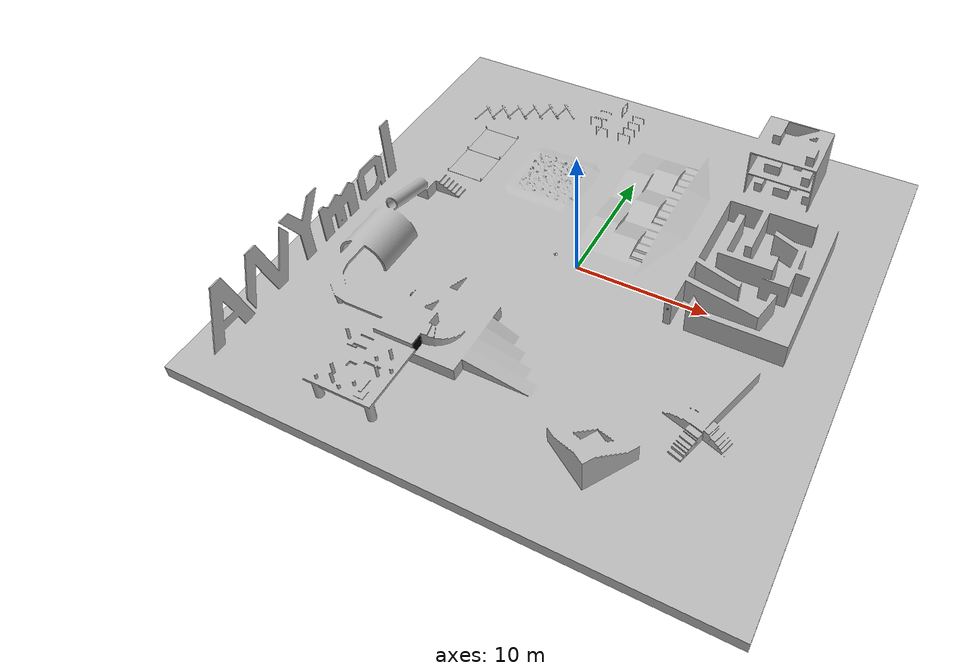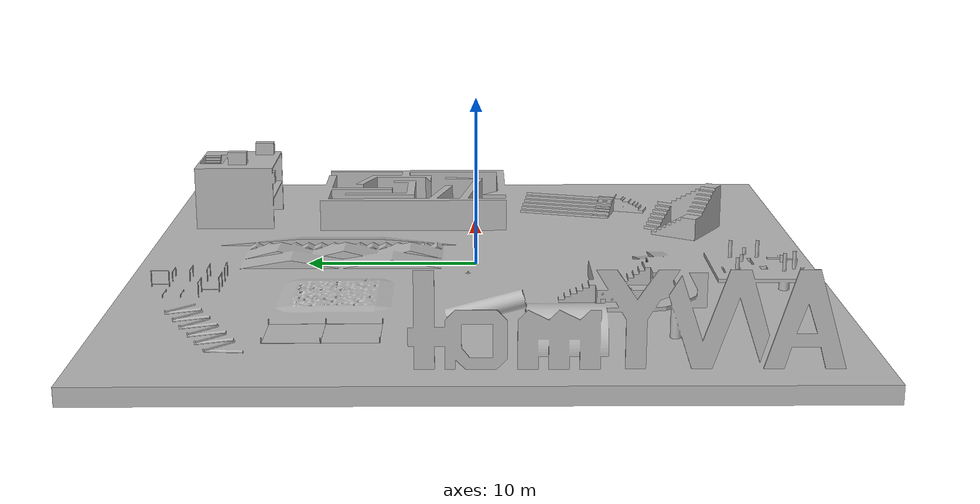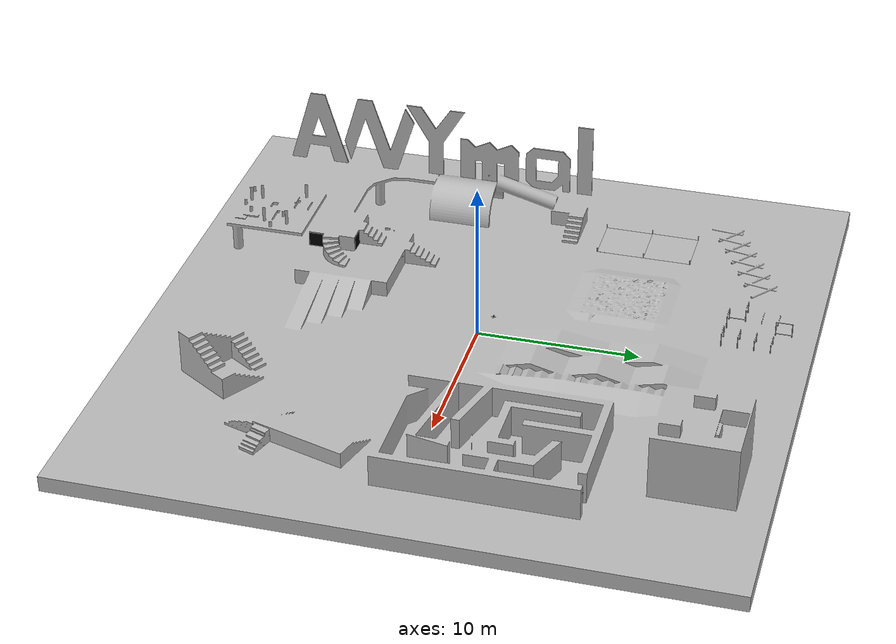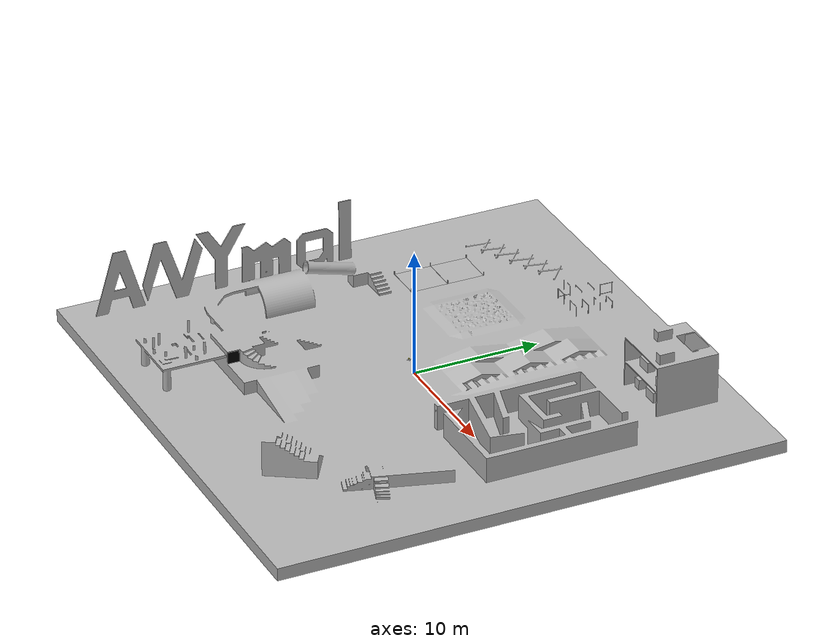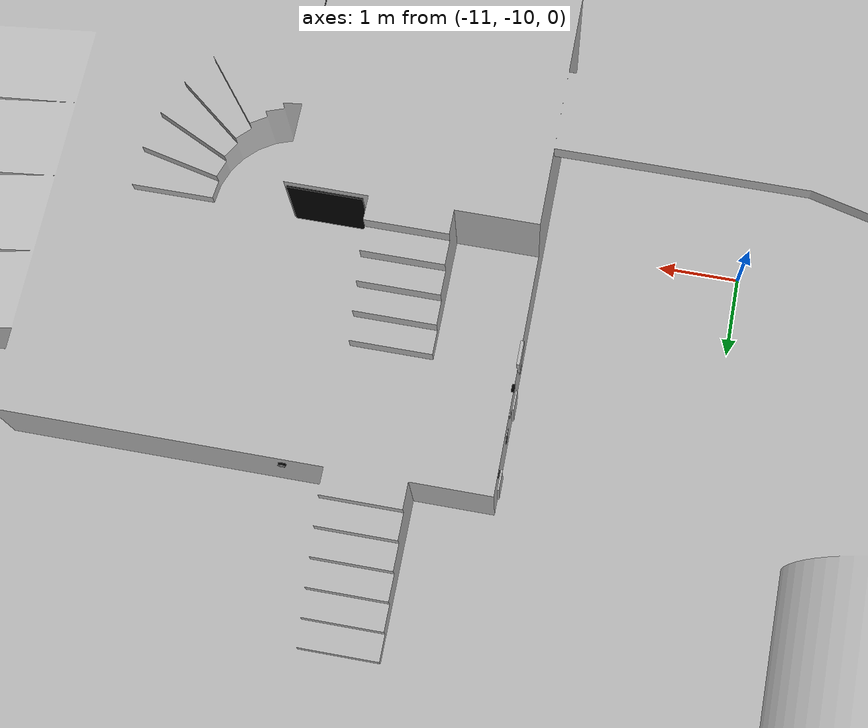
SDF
<?xml version="1.0"?>

<sdf version="1.4">
  <world name="default">

    <!-- World -->
    <include>
      <uri>model://sun</uri>
    </include>
    <include>
      <uri>model://playground</uri>
    </include>

    <!-- Docking stations -->
    <include>
      <uri>model://docking_station</uri>
      <pose>-2.0 0.5 0.001 0 0 3.14159</pose>
    </include>

    <!-- April tags -->
    <include>
      <uri>model://apriltag_0_size_18cm</uri>
      <pose>7.495 0.0 1.5 0 0 3.14159</pose>
    </include>

    <!-- Thermal inspection items -->
    <include>
      <uri>model://heat_plate_0.15x0.15_e1.0</uri>
      <pose>7.75 -2.0 1.5 0 0 0</pose>
      <name>heat_maze_entrance</name>
    </include>
    <include>
      <uri>model://heat_plate_0.9x0.9_e0.5</uri>
      <pose>-6.0 -9.45 1.5 0 0 0</pose>
      <name>heat_first_floor_1</name>
    </include>
    <include>
      <uri>model://heat_plate_0.9x0.9_e0.1</uri>
      <pose>-5.5 -12.0 1.5 0 0 0</pose>
      <name>heat_first_floor_4</name>
    </include>

    <!-- Dial inspection items -->
    <include>
      <uri>model://pressure_gauge_501</uri>
      <pose>-6.0 -6.45 0.8 0 0 1.5708</pose>
      <name>gauge_ground_floor_1</name>
    </include>
    <include>
      <uri>model://pressure_gauge_501</uri>
      <pose>15.7 10.05 1.6 0 0 1.5708</pose>
      <name>gauge_maze_exit</name>
    </include>
    <include>
      <uri>model://pressure_gauge_501</uri>
      <pose>-17.7 -3.9 0.5 0 0 0</pose>
      <name>gauge_second_floor_2</name>
    </include>

    <!-- Inspection intelligence items -->
    <include>
      <uri>model://round_gauge_1</uri>
      <pose>-8.52 -6.8 0.8 0 0 3.14159</pose>
      <name>round_gauge_1_ground_floor</name>
    </include>
    <include>
      <uri>model://pressure_gauge_501</uri>
      <pose>-8.52 -7.8 1.0 0 0 3.14159</pose>
      <name>round_gauge_501_ground_floor</name>
    </include>
    <include>
      <uri>model://round_gauge_2</uri>
      <pose>-8.52 -7.3 0.5 0 0 3.14159</pose>
      <name>round_gauge_2_ground_floor</name>
    </include>
    <include>
      <uri>model://square_gauge_1</uri>
      <pose>-8.52 -7.3 0.8 0 0 3.14159</pose>
      <name>square_gauge_1_ground_floor</name>
    </include>
    <include>
      <uri>model://square_gauge_2</uri>
      <pose>-8.52 -8.2 0.5 0 0 3.14159</pose>
      <name>square_gauge_2_ground_floor</name>
    </include>
    <include>
      <uri>model://fire_extinguisher_1</uri>
      <pose>-8.52 -6.8 0.27 0 0 3.14159</pose>
      <name>fire_extinguisher_1_ground_floor</name>
    </include>
    <include>
      <uri>model://fire_extinguisher_2</uri>
      <pose>-8.52 -7.8 0.27 0 0 3.14159</pose>
      <name>fire_extinguisher_2_ground_floor</name>
    </include>
    <include>
      <uri>model://linear_gauge_1</uri>
      <pose>-8.52 -7.5 0.9 0 0 3.14159</pose>
      <name>linear_gauge_1_ground_floor</name>
    </include>
    <include>
      <uri>model://safety_helmet_1</uri>
      <pose>-8.52 -8.2 1.0 0 0 3.14159</pose>
      <name>safety_helmet_1_ground_floor</name>
    </include>

  </world>
</sdf>

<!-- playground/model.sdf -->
<sdf version="1.4">
  <model name="playground">
    <pose>0 0 0 0 0 0</pose>
    <static>true</static>

    <!-- Playground -->
    <link name="playground">
      <pose>0.447 3.1 0.548 1.57079632679 0 0</pose>
      <visual name="visual">
        <geometry>
          <mesh>
            <uri>model://playground/meshes/playground.stl</uri>
          </mesh>
        </geometry>
      </visual>
      <collision name="collision">
        <geometry>
          <mesh>
            <uri>model://playground/meshes/playground.stl</uri>
          </mesh>
        </geometry>
        <surface>
          <friction>
            <ode>
              <mu>0.8</mu>
              <mu2>0.8</mu2>
            </ode>
          </friction>
        </surface>
      </collision>
    </link>

    <!-- Slippery area -->
    <link name="slippery_area">
      <pose>-12.5 6.5 -0.5 0 0 0</pose>
      <visual name="visual">
        <geometry>
          <mesh>
            <uri>model://playground/meshes/slippery_area.dae</uri>
          </mesh>
        </geometry>
      </visual>
      <collision name="collision">
        <geometry>
          <mesh>
            <uri>model://playground/meshes/slippery_area.dae</uri>
          </mesh>
        </geometry>
        <surface>
          <friction>
            <ode>
              <mu>0.3</mu>
              <mu2>0.3</mu2>
            </ode>
          </friction>
        </surface>
      </collision>
    </link>

    <!-- Very slippery area -->
    <link name="very_slippery_area">
      <pose>-12.5 9.5 -0.5 0 0 0</pose>
      <visual name="visual">
        <geometry>
          <mesh>
            <uri>model://playground/meshes/very_slippery_area.dae</uri>
          </mesh>
        </geometry>
      </visual>
      <collision name="collision">
        <geometry>
          <mesh>
            <uri>model://playground/meshes/very_slippery_area.dae</uri>
          </mesh>
        </geometry>
        <surface>
          <friction>
            <ode>
              <mu>0.1</mu>
              <mu2>0.1</mu2>
            </ode>
          </friction>
        </surface>
      </collision>
    </link>

  </model>
</sdf>

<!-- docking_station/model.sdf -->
<sdf version="1.4">
  <model name="docking_station">
    <pose>0 0 0 0 0 0</pose>
    <static>true</static>
    <link name="apriltag36_11_00000_link">
      <visual name="apriltag36_11_00000_visual">
        <pose>-0.11 0 0.006 0 0 -1.5708</pose>
        <geometry>
          <mesh>
            <uri>model://apriltag_0_size_18cm/meshes/apriltag36_11_00000.dae</uri>
          </mesh>
        </geometry>
      </visual>
    </link>
    <link name="apriltag36_11_00001_link">
      <visual name="apriltag36_11_00001_visual">
        <pose>0 -0.11 0.006 0 0 0</pose>
        <geometry>
          <mesh>
            <uri>model://apriltag_0_size_18cm/meshes/apriltag36_11_00001.dae</uri>
          </mesh>
        </geometry>
      </visual>
    </link>
    <link name="apriltag36_11_00002_link">
      <visual name="apriltag36_11_00002_visual">
        <pose>0.11 0 0.006 0 0 1.5708</pose>
        <geometry>
          <mesh>
            <uri>model://apriltag_0_size_18cm/meshes/apriltag36_11_00002.dae</uri>
          </mesh>
        </geometry>
      </visual>
    </link>
    <link name="apriltag36_11_00003_link">
      <visual name="apriltag36_11_00003_visual">
        <pose>0 0.11 0.006 0 0 3.1415</pose>
        <geometry>
          <mesh>
            <uri>model://apriltag_0_size_18cm/meshes/apriltag36_11_00003.dae</uri>
          </mesh>
        </geometry>
      </visual>
    </link>
    <link name="docking_port_link">
      <visual name="docking_port_visual">
        <pose>0 0 0 0 0 0</pose>
        <geometry>
          <mesh>
            <uri>model://docking_station/meshes/docking_port.dae</uri>
          </mesh>
        </geometry>
      </visual>
    </link>
  </model>
</sdf>

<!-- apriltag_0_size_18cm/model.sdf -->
<sdf version="1.4">
  <model name="apriltag_0_size_18cm">
    <pose>0 0 0 0 0 0</pose>
    <static>true</static>
    <link name="apriltag_0_size_18cm_link">
      <visual name="apriltag_0_size_18cm_visual">
        <pose>0 0 0 0 0 0</pose>
        <geometry>
          <mesh>
            <uri>model://apriltag_0_size_18cm/meshes/apriltag_0_size_18cm.dae</uri>
          </mesh>
        </geometry>
      </visual>
    </link>
  </model>
</sdf>

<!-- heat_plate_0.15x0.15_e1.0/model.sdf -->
<sdf version="1.4">
  <model name="heat_plate_0.15x0.15_e1.0">
    <pose>0 0 0 0 0 0</pose>
    <static>true</static>
    <link name="heat_plate_0.15x0.15_e1.0_link">
      <visual name="heat_plate_0.15x0.15_e1.0_visual">
        <geometry>
          <box>
            <size>0.15 0.02 0.15</size>
          </box>
        </geometry>
        <material>
          <ambient>0 0 0 1</ambient>
          <diffuse>0 0 0 1</diffuse>
          <specular>0 0 0 0</specular>
          <emissive>1 0 0 1</emissive>
        </material>
      </visual>
    </link>
  </model>
</sdf>

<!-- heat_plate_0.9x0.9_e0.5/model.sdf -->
<sdf version="1.4">
  <model name="heat_plate_0.9x0.9_e0.5">
    <pose>0 0 0 0 0 0</pose>
    <static>true</static>
    <link name="heat_plate_0.9x0.9_e0.5_link">
      <visual name="heat_plate_0.9x0.9_e0.5_visual">
        <geometry>
          <box>
            <size>0.9 0.02 0.9</size>
          </box>
        </geometry>
        <material>
          <ambient>0 0 0 1</ambient>
          <diffuse>0 0 0 1</diffuse>
          <specular>0 0 0 0</specular>
          <emissive>0.5 0 0 1</emissive>
        </material>
      </visual>
    </link>
  </model>
</sdf>

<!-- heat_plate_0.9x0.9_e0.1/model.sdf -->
<sdf version="1.4">
  <model name="heat_plate_0.9x0.9_e0.1">
    <pose>0 0 0 0 0 0</pose>
    <static>true</static>
    <link name="heat_plate_0.9x0.9_e0.1_link">
      <visual name="heat_plate_0.9x0.9_e0.1_visual">
        <geometry>
          <box>
            <size>0.02 0.9 0.9</size>
          </box>
        </geometry>
        <material>
          <ambient>0 0 0 1</ambient>
          <diffuse>0 0 0 1</diffuse>
          <specular>0 0 0 0</specular>
          <emissive>0.1 0 0 1</emissive>
        </material>
      </visual>
    </link>
  </model>
</sdf>

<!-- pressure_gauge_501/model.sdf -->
<sdf version="1.4">
  <model name="pressure_gauge_501">
    <pose>0 0 0 0 0 0</pose>
    <static>true</static>
    <link name="pressure_gauge_501_link">
      <visual name="pressure_gauge_501_visual">
        <pose>0 0 0 0 0 0</pose>
        <geometry>
          <mesh>
            <uri>model://pressure_gauge_501/meshes/pressure_gauge_501.dae</uri>
          </mesh>
        </geometry>
      </visual>
    </link>
  </model>
</sdf>

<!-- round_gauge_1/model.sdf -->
<sdf version="1.4">
  <model name="round_gauge_1">
    <pose>0 0 0 0 0 0</pose>
    <static>true</static>
    <link name="round_gauge_1_link">
      <visual name="round_gauge_1_visual">
        <pose>0 0 0 0 0 0</pose>
        <geometry>
          <mesh>
            <uri>model://round_gauge_1/meshes/round_gauge_1.dae</uri>
          </mesh>
        </geometry>
      </visual>
    </link>
  </model>
</sdf>

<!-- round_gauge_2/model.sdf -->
<sdf version="1.4">
  <model name="round_gauge_2">
    <pose>0 0 0 0 0 0</pose>
    <static>true</static>
    <link name="round_gauge_2_link">
      <visual name="round_gauge_2_visual">
        <pose>0 0 0 0 0 0</pose>
        <geometry>
          <mesh>
            <uri>model://round_gauge_2/meshes/round_gauge_2.dae</uri>
          </mesh>
        </geometry>
      </visual>
    </link>
  </model>
</sdf>

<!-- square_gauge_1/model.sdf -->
<sdf version="1.4">
  <model name="square_gauge_1">
    <pose>0 0 0 0 0 0</pose>
    <static>true</static>
    <link name="square_gauge_1_link">
      <visual name="square_gauge_1_visual">
        <pose>0 0 0 0 0 0</pose>
        <geometry>
          <mesh>
            <uri>model://square_gauge_1/meshes/square_gauge_1.dae</uri>
          </mesh>
        </geometry>
      </visual>
    </link>
  </model>
</sdf>

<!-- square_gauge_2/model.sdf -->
<sdf version="1.4">
  <model name="square_gauge_2">
    <pose>0 0 0 0 0 0</pose>
    <static>true</static>
    <link name="square_gauge_2_link">
      <visual name="square_gauge_2_visual">
        <pose>0 0 0 0 0 0</pose>
        <geometry>
          <mesh>
            <uri>model://square_gauge_2/meshes/square_gauge_2.dae</uri>
          </mesh>
        </geometry>
      </visual>
    </link>
  </model>
</sdf>

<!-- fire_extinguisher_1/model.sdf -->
<sdf version="1.4">
  <model name="fire_extinguisher_1">
    <pose>0 0 0 0 0 0</pose>
    <static>true</static>
    <link name="fire_extinguisher_1_link">
      <visual name="fire_extinguisher_1_visual">
        <pose>0 0 0 0 0 0</pose>
        <geometry>
          <mesh>
            <uri>model://fire_extinguisher_1/meshes/fire_extinguisher_1.dae</uri>
          </mesh>
        </geometry>
      </visual>
    </link>
  </model>
</sdf>

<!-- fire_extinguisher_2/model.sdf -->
<sdf version="1.4">
  <model name="fire_extinguisher_2">
    <pose>0 0 0 0 0 0</pose>
    <static>true</static>
    <link name="fire_extinguisher_2_link">
      <visual name="fire_extinguisher_2_visual">
        <pose>0 0 0 0 0 0</pose>
        <geometry>
          <mesh>
            <uri>model://fire_extinguisher_2/meshes/fire_extinguisher_2.dae</uri>
          </mesh>
        </geometry>
      </visual>
    </link>
  </model>
</sdf>

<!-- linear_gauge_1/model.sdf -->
<sdf version="1.4">
  <model name="linear_gauge_1">
    <pose>0 0 0 0 0 0</pose>
    <static>true</static>
    <link name="linear_gauge_1_link">
      <visual name="linear_gauge_1_visual">
        <pose>0 0 0 0 0 0</pose>
        <geometry>
          <mesh>
            <uri>model://linear_gauge_1/meshes/linear_gauge_1.dae</uri>
          </mesh>
        </geometry>
      </visual>
    </link>
  </model>
</sdf>

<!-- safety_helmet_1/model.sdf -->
<sdf version="1.4">
  <model name="safety_helmet_1">
    <pose>0 0 0 0 0 0</pose>
    <static>true</static>
    <link name="safety_helmet_1_link">
      <visual name="safety_helmet_1_visual">
        <pose>0 0 0 0 0 0</pose>
        <geometry>
          <mesh>
            <uri>model://safety_helmet_1/meshes/safety_helmet_1.dae</uri>
          </mesh>
        </geometry>
      </visual>
    </link>
  </model>
</sdf>
